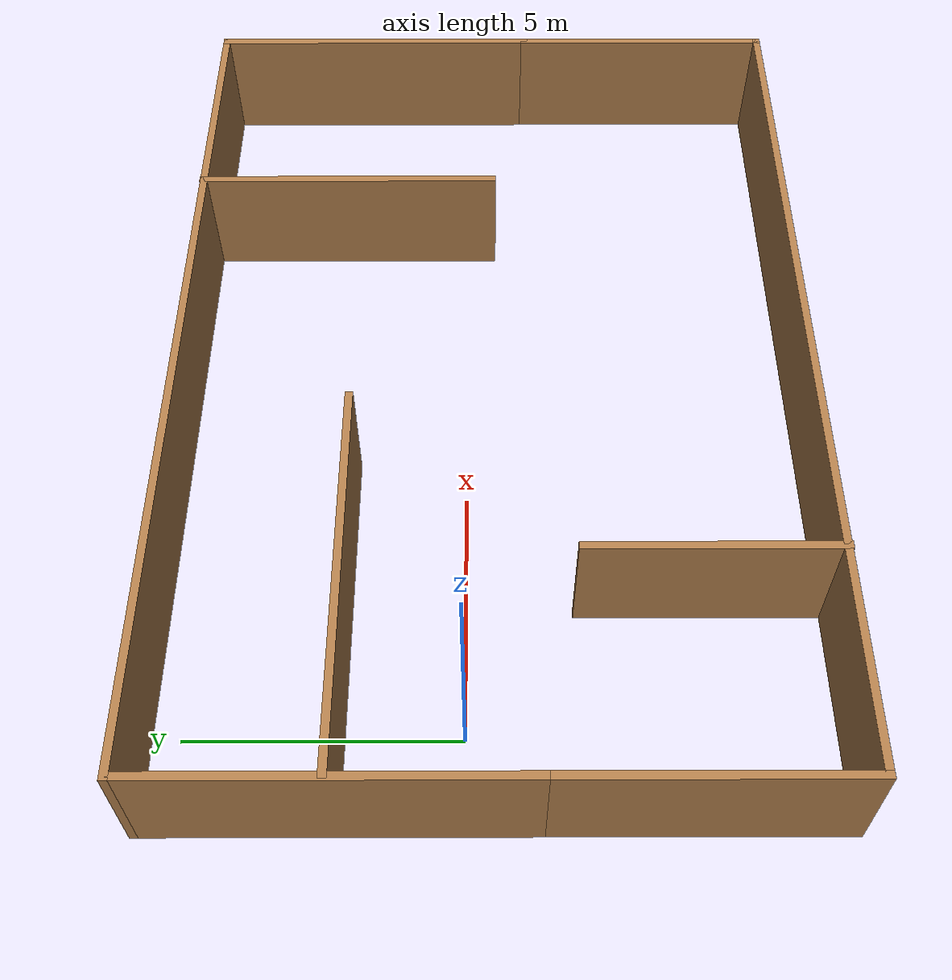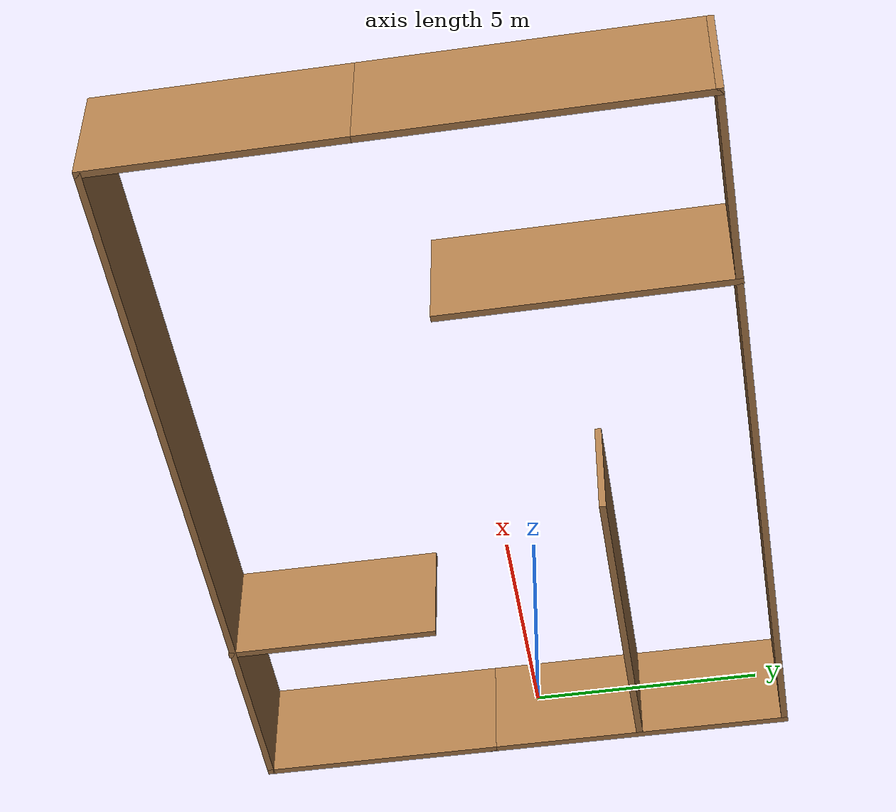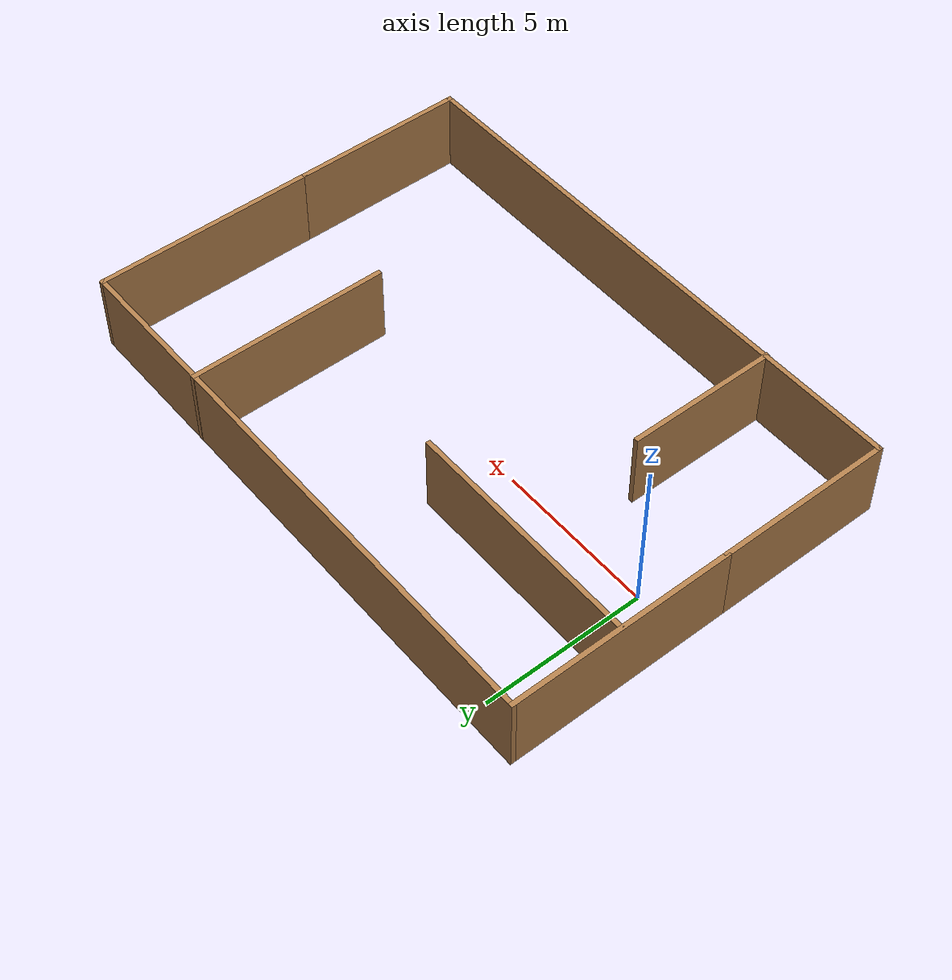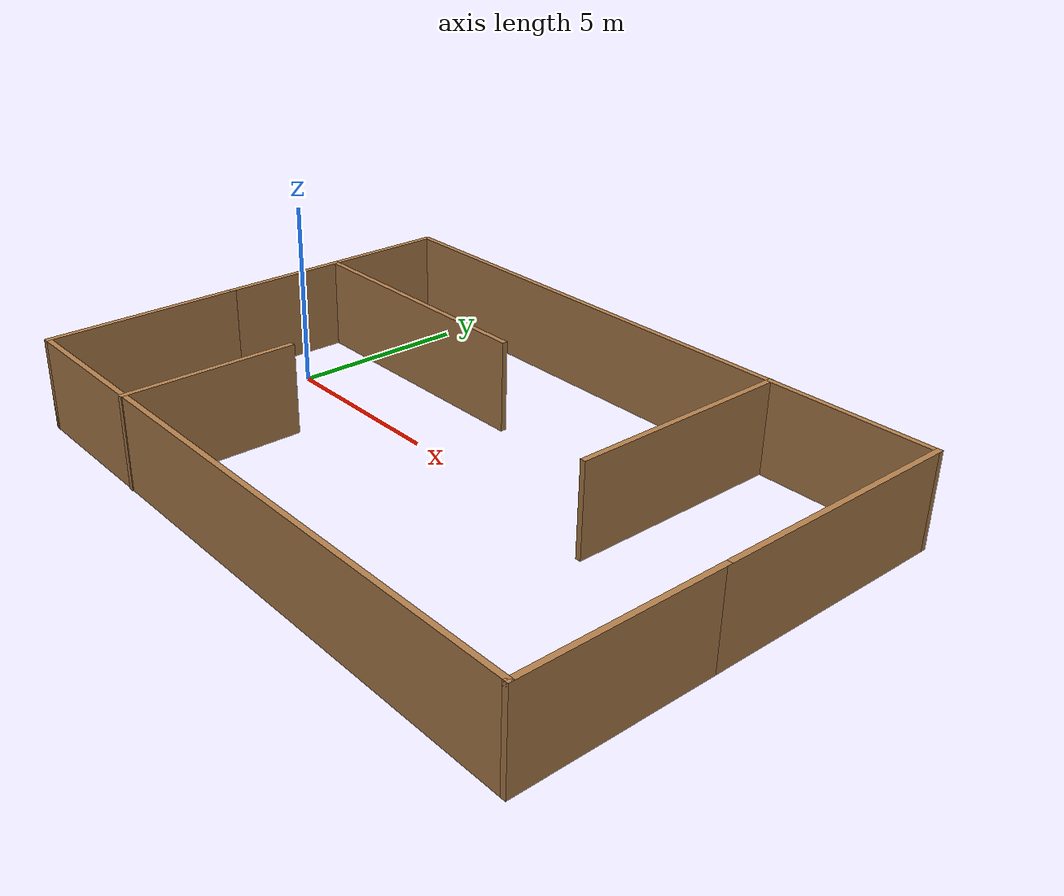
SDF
<?xml version='1.0'?>
<sdf version='1.6'>
  <model name='auv'>
    <pose frame=''>7.17 -0.535932 0 0 -0 0</pose>
    <link name='Wall_0'>
      <collision name='Wall_0_Collision'>
        <geometry>
          <box>
            <size>5.5 0.15 2.5</size>
          </box>
        </geometry>
        <pose frame=''>0 0 1.25 0 -0 0</pose>
      </collision>
      <visual name='Wall_0_Visual'>
        <pose frame=''>0 0 1.25 0 -0 0</pose>
        <geometry>
          <box>
            <size>5.5 0.15 2.5</size>
          </box>
        </geometry>
        <material>
          <script>
            <uri>file://media/materials/scripts/gazebo.material</uri>
            <name>Gazebo/Wood</name>
          </script>
          <ambient>1 1 1 1</ambient>
        </material>
      </visual>
      <pose frame=''>-8.8 -3.41907 0 0 0 -1.5708</pose>
    </link>
    <link name='Wall_1'>
      <collision name='Wall_1_Collision'>
        <geometry>
          <box>
            <size>17.75 0.15 2.5</size>
          </box>
        </geometry>
        <pose frame=''>0 0 1.25 0 -0 0</pose>
      </collision>
      <visual name='Wall_1_Visual'>
        <pose frame=''>0 0 1.25 0 -0 0</pose>
        <geometry>
          <box>
            <size>17.75 0.15 2.5</size>
          </box>
        </geometry>
        <material>
          <script>
            <uri>file://media/materials/scripts/gazebo.material</uri>
            <name>Gazebo/Wood</name>
          </script>
          <ambient>1 1 1 1</ambient>
        </material>
      </visual>
      <pose frame=''>0 -6.09407 0 0 -0 0</pose>
    </link>
    <link name='Wall_11'>
      <collision name='Wall_11_Collision'>
        <geometry>
          <box>
            <size>6.25 0.15 2.5</size>
          </box>
        </geometry>
        <pose frame=''>0 0 1.25 0 -0 0</pose>
      </collision>
      <visual name='Wall_11_Visual'>
        <pose frame=''>0 0 1.25 0 -0 0</pose>
        <geometry>
          <box>
            <size>6.25 0.15 2.5</size>
          </box>
        </geometry>
        <material>
          <script>
            <uri>file://media/materials/scripts/gazebo.material</uri>
            <name>Gazebo/Wood</name>
          </script>
          <ambient>1 1 1 1</ambient>
        </material>
      </visual>
      <pose frame=''>4.30307 3.0679 0 0 0 -1.5708</pose>
    </link>
    <link name='Wall_13'>
      <collision name='Wall_13_Collision'>
        <geometry>
          <box>
            <size>7.5 0.15 2.5</size>
          </box>
        </geometry>
        <pose frame=''>0 0 1.25 0 -0 0</pose>
      </collision>
      <visual name='Wall_13_Visual'>
        <pose frame=''>0 0 1.25 0 -0 0</pose>
        <geometry>
          <box>
            <size>7.5 0.15 2.5</size>
          </box>
        </geometry>
        <material>
          <script>
            <uri>file://media/materials/scripts/gazebo.material</uri>
            <name>Gazebo/Wood</name>
          </script>
          <ambient>1 1 1 1</ambient>
        </material>
      </visual>
      <pose frame=''>-5.09515 2.72165 0 0 -0 0</pose>
    </link>
    <link name='Wall_2'>
      <collision name='Wall_2_Collision'>
        <geometry>
          <box>
            <size>5.5 0.15 2.5</size>
          </box>
        </geometry>
        <pose frame=''>0 0 1.25 0 -0 0</pose>
      </collision>
      <visual name='Wall_2_Visual'>
        <pose frame=''>0 0 1.25 0 -0 0</pose>
        <geometry>
          <box>
            <size>5.5 0.15 2.5</size>
          </box>
        </geometry>
        <material>
          <script>
            <uri>file://media/materials/scripts/gazebo.material</uri>
            <name>Gazebo/Wood</name>
          </script>
          <ambient>1 1 1 1</ambient>
        </material>
      </visual>
      <pose frame=''>8.8 -3.41907 0 0 -0 1.5708</pose>
    </link>
    <link name='Wall_3'>
      <collision name='Wall_3_Collision'>
        <geometry>
          <box>
            <size>7 0.15 2.5</size>
          </box>
        </geometry>
        <pose frame=''>0 0 1.25 0 -0 0</pose>
      </collision>
      <visual name='Wall_3_Visual'>
        <pose frame=''>0 0 1.25 0 -0 0</pose>
        <geometry>
          <box>
            <size>7 0.15 2.5</size>
          </box>
        </geometry>
        <material>
          <script>
            <uri>file://media/materials/scripts/gazebo.material</uri>
            <name>Gazebo/Wood</name>
          </script>
          <ambient>1 1 1 1</ambient>
        </material>
      </visual>
      <pose frame=''>8.8 2.68093 0 0 -0 1.5708</pose>
    </link>
    <link name='Wall_6'>
      <collision name='Wall_6_Collision'>
        <geometry>
          <box>
            <size>17.75 0.15 2.5</size>
          </box>
        </geometry>
        <pose frame=''>0 0 1.25 0 -0 0</pose>
      </collision>
      <visual name='Wall_6_Visual'>
        <pose frame=''>0 0 1.25 0 -0 0</pose>
        <geometry>
          <box>
            <size>17.75 0.15 2.5</size>
          </box>
        </geometry>
        <material>
          <script>
            <uri>file://media/materials/scripts/gazebo.material</uri>
            <name>Gazebo/Wood</name>
          </script>
          <ambient>1 1 1 1</ambient>
        </material>
      </visual>
      <pose frame=''>0 6.10593 0 0 -0 3.14159</pose>
    </link>
    <link name='Wall_7'>
      <collision name='Wall_7_Collision'>
        <geometry>
          <box>
            <size>7 0.15 2.5</size>
          </box>
        </geometry>
        <pose frame=''>0 0 1.25 0 -0 0</pose>
      </collision>
      <visual name='Wall_7_Visual'>
        <pose frame=''>0 0 1.25 0 -0 0</pose>
        <geometry>
          <box>
            <size>7 0.15 2.5</size>
          </box>
        </geometry>
        <material>
          <script>
            <uri>file://media/materials/scripts/gazebo.material</uri>
            <name>Gazebo/Wood</name>
          </script>
          <ambient>1 1 1 1</ambient>
        </material>
      </visual>
      <pose frame=''>-8.8 2.68093 0 0 0 -1.5708</pose>
    </link>
    <link name='Wall_9'>
      <collision name='Wall_9_Collision'>
        <geometry>
          <box>
            <size>4.75 0.15 2.5</size>
          </box>
        </geometry>
        <pose frame=''>0 0 1.25 0 -0 0</pose>
      </collision>
      <visual name='Wall_9_Visual'>
        <pose frame=''>0 0 1.25 0 -0 0</pose>
        <geometry>
          <box>
            <size>4.75 0.15 2.5</size>
          </box>
        </geometry>
        <material>
          <script>
            <uri>file://media/materials/scripts/gazebo.material</uri>
            <name>Gazebo/Wood</name>
          </script>
          <ambient>1 1 1 1</ambient>
        </material>
      </visual>
      <pose frame=''>-4.67605 -3.81789 0 0 -0 1.5708</pose>
    </link>
    <static>1</static>
  </model>
</sdf>
